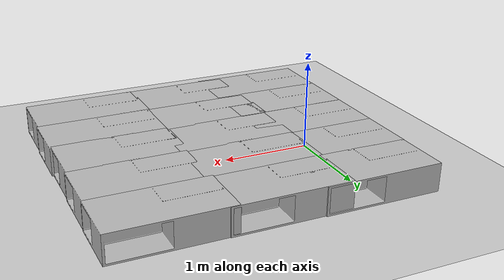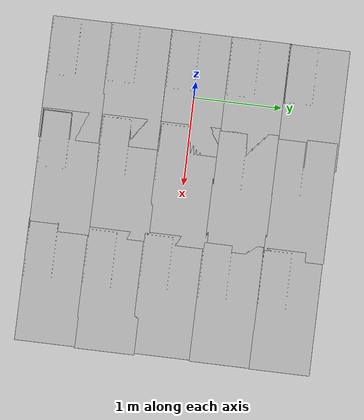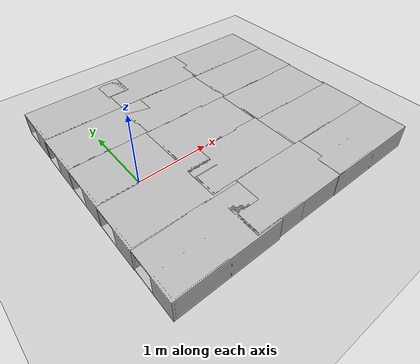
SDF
<sdf version='1.9'>
  <world name='empty_world'>
    <gravity>0 0 -9.8</gravity>
    <magnetic_field>6e-06 2.3e-05 -4.2e-05</magnetic_field>
    <atmosphere type='adiabatic'/>
    <physics type='ode'>
      <max_step_size>0.001</max_step_size>
      <real_time_factor>1</real_time_factor>
      <real_time_update_rate>1000</real_time_update_rate>
    </physics>
    <scene>
      <ambient>0.4 0.4 0.4 1</ambient>
      <background>0.7 0.7 0.7 1</background>
      <shadows>true</shadows>
    </scene>
    <model name='ground_plane'>
      <static>true</static>
      <link name='link'>
        <collision name='collision'>
          <geometry>
            <plane>
              <normal>0 0 1</normal>
              <size>1 1</size>
            </plane>
          </geometry>
          <surface>
            <friction>
              <ode/>
            </friction>
            <bounce/>
            <contact/>
          </surface>
        </collision>
        <visual name='visual'>
          <geometry>
            <plane>
              <normal>0 0 1</normal>
              <size>100 100</size>
            </plane>
          </geometry>
          <material>
            <ambient>0.8 0.8 0.8 1</ambient>
            <diffuse>0.8 0.8 0.8 1</diffuse>
            <specular>0.8 0.8 0.8 1</specular>
          </material>
        </visual>
        <pose>0 0 0 0 -0 0</pose>
        <inertial>
          <pose>0 0 0 0 -0 0</pose>
          <mass>1</mass>
          <inertia>
            <ixx>1</ixx>
            <ixy>0</ixy>
            <ixz>0</ixz>
            <iyy>1</iyy>
            <iyz>0</iyz>
            <izz>1</izz>
          </inertia>
        </inertial>
        <enable_wind>false</enable_wind>
      </link>
      <pose>0 0 0 0 -0 0</pose>
      <self_collide>false</self_collide>
    </model>
    <model name='CoffeeTable_1'>
      <static>true</static>
      <model name='aws_robomaker_residential_CoffeeTable_01'>
        <link name='link'>
          <inertial>
            <mass>21.699999999999999</mass>
            <inertia>
              <ixx>0.81374999999999975</ixx>
              <ixy>0</ixy>
              <ixz>0</ixz>
              <iyy>2.76675</iyy>
              <iyz>0</iyz>
              <izz>3.254</izz>
            </inertia>
          </inertial>
          <collision name='collision'>
            <geometry>
              <mesh>
                <uri>model://aws_robomaker_residential_CoffeeTable_01/meshes/aws_CoffeeTable_01_collision.DAE</uri>
                <scale>1 1 1</scale>
              </mesh>
            </geometry>
            <surface>
              <contact>
                <ode>
                  <max_vel>0.01</max_vel>
                </ode>
              </contact>
            </surface>
          </collision>
          <visual name='visual'>
            <geometry>
              <mesh>
                <uri>model://aws_robomaker_residential_CoffeeTable_01/meshes/aws_CoffeeTable_01_visual.DAE</uri>
              </mesh>
            </geometry>
            <meta>
              <layer>1</layer>
            </meta>
          </visual>
        </link>
        <static>true</static>
      </model>
      <pose>0 0 0.041983 0 -0 0</pose>
      <self_collide>false</self_collide>
    </model>
    <model name='CoffeeTable_2'>
      <static>true</static>
      <model name='aws_robomaker_residential_CoffeeTable_01'>
        <link name='link'>
          <inertial>
            <mass>21.699999999999999</mass>
            <inertia>
              <ixx>0.81374999999999975</ixx>
              <ixy>0</ixy>
              <ixz>0</ixz>
              <iyy>2.76675</iyy>
              <iyz>0</iyz>
              <izz>3.254</izz>
            </inertia>
          </inertial>
          <collision name='collision'>
            <geometry>
              <mesh>
                <uri>model://aws_robomaker_residential_CoffeeTable_01/meshes/aws_CoffeeTable_01_collision.DAE</uri>
                <scale>1 1 1</scale>
              </mesh>
            </geometry>
            <surface>
              <contact>
                <ode>
                  <max_vel>0.01</max_vel>
                </ode>
              </contact>
            </surface>
          </collision>
          <visual name='visual'>
            <geometry>
              <mesh>
                <uri>model://aws_robomaker_residential_CoffeeTable_01/meshes/aws_CoffeeTable_01_visual.DAE</uri>
              </mesh>
            </geometry>
            <meta>
              <layer>1</layer>
            </meta>
          </visual>
        </link>
        <static>true</static>
      </model>
      <pose>1 0 0.041983 0 -0 0</pose>
      <self_collide>false</self_collide>
    </model>
    <model name='CoffeeTable_3'>
      <static>true</static>
      <model name='aws_robomaker_residential_CoffeeTable_01'>
        <link name='link'>
          <inertial>
            <mass>21.699999999999999</mass>
            <inertia>
              <ixx>0.81374999999999975</ixx>
              <ixy>0</ixy>
              <ixz>0</ixz>
              <iyy>2.76675</iyy>
              <iyz>0</iyz>
              <izz>3.254</izz>
            </inertia>
          </inertial>
          <collision name='collision'>
            <geometry>
              <mesh>
                <uri>model://aws_robomaker_residential_CoffeeTable_01/meshes/aws_CoffeeTable_01_collision.DAE</uri>
                <scale>1 1 1</scale>
              </mesh>
            </geometry>
            <surface>
              <contact>
                <ode>
                  <max_vel>0.01</max_vel>
                </ode>
              </contact>
            </surface>
          </collision>
          <visual name='visual'>
            <geometry>
              <mesh>
                <uri>model://aws_robomaker_residential_CoffeeTable_01/meshes/aws_CoffeeTable_01_visual.DAE</uri>
              </mesh>
            </geometry>
            <meta>
              <layer>1</layer>
            </meta>
          </visual>
        </link>
        <static>true</static>
      </model>
      <pose>1.01186 1.27053 0.041983 0 -0 0</pose>
      <self_collide>false</self_collide>
    </model>
    <model name='CoffeeTable_4'>
      <static>true</static>
      <model name='aws_robomaker_residential_CoffeeTable_01'>
        <link name='link'>
          <inertial>
            <mass>21.699999999999999</mass>
            <inertia>
              <ixx>0.81374999999999975</ixx>
              <ixy>0</ixy>
              <ixz>0</ixz>
              <iyy>2.76675</iyy>
              <iyz>0</iyz>
              <izz>3.254</izz>
            </inertia>
          </inertial>
          <collision name='collision'>
            <geometry>
              <mesh>
                <uri>model://aws_robomaker_residential_CoffeeTable_01/meshes/aws_CoffeeTable_01_collision.DAE</uri>
                <scale>1 1 1</scale>
              </mesh>
            </geometry>
            <surface>
              <contact>
                <ode>
                  <max_vel>0.01</max_vel>
                </ode>
              </contact>
            </surface>
          </collision>
          <visual name='visual'>
            <geometry>
              <mesh>
                <uri>model://aws_robomaker_residential_CoffeeTable_01/meshes/aws_CoffeeTable_01_visual.DAE</uri>
              </mesh>
            </geometry>
            <meta>
              <layer>1</layer>
            </meta>
          </visual>
        </link>
        <static>true</static>
      </model>
      <pose>0 0.652446 0.041983 0 -0 0</pose>
      <self_collide>false</self_collide>
    </model>
    <model name='CoffeeTable_5'>
      <static>true</static>
      <model name='aws_robomaker_residential_CoffeeTable_01'>
        <link name='link'>
          <inertial>
            <mass>21.699999999999999</mass>
            <inertia>
              <ixx>0.81374999999999975</ixx>
              <ixy>0</ixy>
              <ixz>0</ixz>
              <iyy>2.76675</iyy>
              <iyz>0</iyz>
              <izz>3.254</izz>
            </inertia>
          </inertial>
          <collision name='collision'>
            <geometry>
              <mesh>
                <uri>model://aws_robomaker_residential_CoffeeTable_01/meshes/aws_CoffeeTable_01_collision.DAE</uri>
                <scale>1 1 1</scale>
              </mesh>
            </geometry>
            <surface>
              <contact>
                <ode>
                  <max_vel>0.01</max_vel>
                </ode>
              </contact>
            </surface>
          </collision>
          <visual name='visual'>
            <geometry>
              <mesh>
                <uri>model://aws_robomaker_residential_CoffeeTable_01/meshes/aws_CoffeeTable_01_visual.DAE</uri>
              </mesh>
            </geometry>
            <meta>
              <layer>1</layer>
            </meta>
          </visual>
        </link>
        <static>true</static>
      </model>
      <pose>1 0.631228 0.041983 0 -0 0</pose>
      <self_collide>false</self_collide>
    </model>
    <model name='CoffeeTable_6'>
      <static>true</static>
      <model name='aws_robomaker_residential_CoffeeTable_01'>
        <link name='link'>
          <inertial>
            <mass>21.699999999999999</mass>
            <inertia>
              <ixx>0.81374999999999975</ixx>
              <ixy>0</ixy>
              <ixz>0</ixz>
              <iyy>2.76675</iyy>
              <iyz>0</iyz>
              <izz>3.254</izz>
            </inertia>
          </inertial>
          <collision name='collision'>
            <geometry>
              <mesh>
                <uri>model://aws_robomaker_residential_CoffeeTable_01/meshes/aws_CoffeeTable_01_collision.DAE</uri>
                <scale>1 1 1</scale>
              </mesh>
            </geometry>
            <surface>
              <contact>
                <ode>
                  <max_vel>0.01</max_vel>
                </ode>
              </contact>
            </surface>
          </collision>
          <visual name='visual'>
            <geometry>
              <mesh>
                <uri>model://aws_robomaker_residential_CoffeeTable_01/meshes/aws_CoffeeTable_01_visual.DAE</uri>
              </mesh>
            </geometry>
            <meta>
              <layer>1</layer>
            </meta>
          </visual>
        </link>
        <static>true</static>
      </model>
      <pose>0.00463 1.28609 0.041983 0 -0 0</pose>
      <self_collide>false</self_collide>
    </model>
    <model name='CoffeeTable_1_1'>
      <static>true</static>
      <model name='aws_robomaker_residential_CoffeeTable_01'>
        <link name='link'>
          <inertial>
            <mass>21.699999999999999</mass>
            <inertia>
              <ixx>0.81374999999999975</ixx>
              <ixy>0</ixy>
              <ixz>0</ixz>
              <iyy>2.76675</iyy>
              <iyz>0</iyz>
              <izz>3.254</izz>
            </inertia>
          </inertial>
          <collision name='collision'>
            <geometry>
              <mesh>
                <uri>model://aws_robomaker_residential_CoffeeTable_01/meshes/aws_CoffeeTable_01_collision.DAE</uri>
                <scale>1 1 1</scale>
              </mesh>
            </geometry>
            <surface>
              <contact>
                <ode>
                  <max_vel>0.01</max_vel>
                </ode>
              </contact>
            </surface>
          </collision>
          <visual name='visual'>
            <geometry>
              <mesh>
                <uri>model://aws_robomaker_residential_CoffeeTable_01/meshes/aws_CoffeeTable_01_visual.DAE</uri>
              </mesh>
            </geometry>
            <meta>
              <layer>1</layer>
            </meta>
          </visual>
        </link>
        <static>true</static>
      </model>
      <pose>-0.000582 -0.654619 0.041983 0 -0 0</pose>
      <self_collide>false</self_collide>
    </model>
    <model name='CoffeeTable_1_2'>
      <static>true</static>
      <model name='aws_robomaker_residential_CoffeeTable_01'>
        <link name='link'>
          <inertial>
            <mass>21.699999999999999</mass>
            <inertia>
              <ixx>0.81374999999999975</ixx>
              <ixy>0</ixy>
              <ixz>0</ixz>
              <iyy>2.76675</iyy>
              <iyz>0</iyz>
              <izz>3.254</izz>
            </inertia>
          </inertial>
          <collision name='collision'>
            <geometry>
              <mesh>
                <uri>model://aws_robomaker_residential_CoffeeTable_01/meshes/aws_CoffeeTable_01_collision.DAE</uri>
                <scale>1 1 1</scale>
              </mesh>
            </geometry>
            <surface>
              <contact>
                <ode>
                  <max_vel>0.01</max_vel>
                </ode>
              </contact>
            </surface>
          </collision>
          <visual name='visual'>
            <geometry>
              <mesh>
                <uri>model://aws_robomaker_residential_CoffeeTable_01/meshes/aws_CoffeeTable_01_visual.DAE</uri>
              </mesh>
            </geometry>
            <meta>
              <layer>1</layer>
            </meta>
          </visual>
        </link>
        <static>true</static>
      </model>
      <pose>0.99619 -0.630908 0.041983 0 -0 0</pose>
      <self_collide>false</self_collide>
    </model>
    <model name='CoffeeTable_1_3'>
      <static>true</static>
      <model name='aws_robomaker_residential_CoffeeTable_01'>
        <link name='link'>
          <inertial>
            <mass>21.699999999999999</mass>
            <inertia>
              <ixx>0.81374999999999975</ixx>
              <ixy>0</ixy>
              <ixz>0</ixz>
              <iyy>2.76675</iyy>
              <iyz>0</iyz>
              <izz>3.254</izz>
            </inertia>
          </inertial>
          <collision name='collision'>
            <geometry>
              <mesh>
                <uri>model://aws_robomaker_residential_CoffeeTable_01/meshes/aws_CoffeeTable_01_collision.DAE</uri>
                <scale>1 1 1</scale>
              </mesh>
            </geometry>
            <surface>
              <contact>
                <ode>
                  <max_vel>0.01</max_vel>
                </ode>
              </contact>
            </surface>
          </collision>
          <visual name='visual'>
            <geometry>
              <mesh>
                <uri>model://aws_robomaker_residential_CoffeeTable_01/meshes/aws_CoffeeTable_01_visual.DAE</uri>
              </mesh>
            </geometry>
            <meta>
              <layer>1</layer>
            </meta>
          </visual>
        </link>
        <static>true</static>
      </model>
      <pose>1.00337 -1.27806 0.041983 0 -0 0</pose>
      <self_collide>false</self_collide>
    </model>
    <model name='CoffeeTable_1_4'>
      <static>true</static>
      <model name='aws_robomaker_residential_CoffeeTable_01'>
        <link name='link'>
          <inertial>
            <mass>21.699999999999999</mass>
            <inertia>
              <ixx>0.81374999999999975</ixx>
              <ixy>0</ixy>
              <ixz>0</ixz>
              <iyy>2.76675</iyy>
              <iyz>0</iyz>
              <izz>3.254</izz>
            </inertia>
          </inertial>
          <collision name='collision'>
            <geometry>
              <mesh>
                <uri>model://aws_robomaker_residential_CoffeeTable_01/meshes/aws_CoffeeTable_01_collision.DAE</uri>
                <scale>1 1 1</scale>
              </mesh>
            </geometry>
            <surface>
              <contact>
                <ode>
                  <max_vel>0.01</max_vel>
                </ode>
              </contact>
            </surface>
          </collision>
          <visual name='visual'>
            <geometry>
              <mesh>
                <uri>model://aws_robomaker_residential_CoffeeTable_01/meshes/aws_CoffeeTable_01_visual.DAE</uri>
              </mesh>
            </geometry>
            <meta>
              <layer>1</layer>
            </meta>
          </visual>
        </link>
        <static>true</static>
      </model>
      <pose>0.004101 -1.29441 0.041983 0 -0 0</pose>
      <self_collide>false</self_collide>
    </model>
    <model name='CoffeeTable_1_5'>
      <static>true</static>
      <model name='aws_robomaker_residential_CoffeeTable_01'>
        <link name='link'>
          <inertial>
            <mass>21.699999999999999</mass>
            <inertia>
              <ixx>0.81374999999999975</ixx>
              <ixy>0</ixy>
              <ixz>0</ixz>
              <iyy>2.76675</iyy>
              <iyz>0</iyz>
              <izz>3.254</izz>
            </inertia>
          </inertial>
          <collision name='collision'>
            <geometry>
              <mesh>
                <uri>model://aws_robomaker_residential_CoffeeTable_01/meshes/aws_CoffeeTable_01_collision.DAE</uri>
                <scale>1 1 1</scale>
              </mesh>
            </geometry>
            <surface>
              <contact>
                <ode>
                  <max_vel>0.01</max_vel>
                </ode>
              </contact>
            </surface>
          </collision>
          <visual name='visual'>
            <geometry>
              <mesh>
                <uri>model://aws_robomaker_residential_CoffeeTable_01/meshes/aws_CoffeeTable_01_visual.DAE</uri>
              </mesh>
            </geometry>
            <meta>
              <layer>1</layer>
            </meta>
          </visual>
        </link>
        <static>true</static>
      </model>
      <pose>2.22092 1.26113 0.041983 0 -0 0</pose>
      <self_collide>false</self_collide>
    </model>
    <model name='CoffeeTable_1_6'>
      <static>true</static>
      <model name='aws_robomaker_residential_CoffeeTable_01'>
        <link name='link'>
          <inertial>
            <mass>21.699999999999999</mass>
            <inertia>
              <ixx>0.81374999999999975</ixx>
              <ixy>0</ixy>
              <ixz>0</ixz>
              <iyy>2.76675</iyy>
              <iyz>0</iyz>
              <izz>3.254</izz>
            </inertia>
          </inertial>
          <collision name='collision'>
            <geometry>
              <mesh>
                <uri>model://aws_robomaker_residential_CoffeeTable_01/meshes/aws_CoffeeTable_01_collision.DAE</uri>
                <scale>1 1 1</scale>
              </mesh>
            </geometry>
            <surface>
              <contact>
                <ode>
                  <max_vel>0.01</max_vel>
                </ode>
              </contact>
            </surface>
          </collision>
          <visual name='visual'>
            <geometry>
              <mesh>
                <uri>model://aws_robomaker_residential_CoffeeTable_01/meshes/aws_CoffeeTable_01_visual.DAE</uri>
              </mesh>
            </geometry>
            <meta>
              <layer>1</layer>
            </meta>
          </visual>
        </link>
        <static>true</static>
      </model>
      <pose>2.21551 0.611993 0.041983 0 -0 0</pose>
      <self_collide>false</self_collide>
    </model>
    <model name='CoffeeTable_1_7'>
      <static>true</static>
      <model name='aws_robomaker_residential_CoffeeTable_01'>
        <link name='link'>
          <inertial>
            <mass>21.699999999999999</mass>
            <inertia>
              <ixx>0.81374999999999975</ixx>
              <ixy>0</ixy>
              <ixz>0</ixz>
              <iyy>2.76675</iyy>
              <iyz>0</iyz>
              <izz>3.254</izz>
            </inertia>
          </inertial>
          <collision name='collision'>
            <geometry>
              <mesh>
                <uri>model://aws_robomaker_residential_CoffeeTable_01/meshes/aws_CoffeeTable_01_collision.DAE</uri>
                <scale>1 1 1</scale>
              </mesh>
            </geometry>
            <surface>
              <contact>
                <ode>
                  <max_vel>0.01</max_vel>
                </ode>
              </contact>
            </surface>
          </collision>
          <visual name='visual'>
            <geometry>
              <mesh>
                <uri>model://aws_robomaker_residential_CoffeeTable_01/meshes/aws_CoffeeTable_01_visual.DAE</uri>
              </mesh>
            </geometry>
            <meta>
              <layer>1</layer>
            </meta>
          </visual>
        </link>
        <static>true</static>
      </model>
      <pose>2.20432 -0.031436 0.041983 0 -0 0</pose>
      <self_collide>false</self_collide>
    </model>
    <model name='CoffeeTable_1_8'>
      <static>true</static>
      <model name='aws_robomaker_residential_CoffeeTable_01'>
        <link name='link'>
          <inertial>
            <mass>21.699999999999999</mass>
            <inertia>
              <ixx>0.81374999999999975</ixx>
              <ixy>0</ixy>
              <ixz>0</ixz>
              <iyy>2.76675</iyy>
              <iyz>0</iyz>
              <izz>3.254</izz>
            </inertia>
          </inertial>
          <collision name='collision'>
            <geometry>
              <mesh>
                <uri>model://aws_robomaker_residential_CoffeeTable_01/meshes/aws_CoffeeTable_01_collision.DAE</uri>
                <scale>1 1 1</scale>
              </mesh>
            </geometry>
            <surface>
              <contact>
                <ode>
                  <max_vel>0.01</max_vel>
                </ode>
              </contact>
            </surface>
          </collision>
          <visual name='visual'>
            <geometry>
              <mesh>
                <uri>model://aws_robomaker_residential_CoffeeTable_01/meshes/aws_CoffeeTable_01_visual.DAE</uri>
              </mesh>
            </geometry>
            <meta>
              <layer>1</layer>
            </meta>
          </visual>
        </link>
        <static>true</static>
      </model>
      <pose>2.22269 -0.638146 0.041983 0 -0 0</pose>
      <self_collide>false</self_collide>
    </model>
    <model name='CoffeeTable_1_9'>
      <static>true</static>
      <model name='aws_robomaker_residential_CoffeeTable_01'>
        <link name='link'>
          <inertial>
            <mass>21.699999999999999</mass>
            <inertia>
              <ixx>0.81374999999999975</ixx>
              <ixy>0</ixy>
              <ixz>0</ixz>
              <iyy>2.76675</iyy>
              <iyz>0</iyz>
              <izz>3.254</izz>
            </inertia>
          </inertial>
          <collision name='collision'>
            <geometry>
              <mesh>
                <uri>model://aws_robomaker_residential_CoffeeTable_01/meshes/aws_CoffeeTable_01_collision.DAE</uri>
                <scale>1 1 1</scale>
              </mesh>
            </geometry>
            <surface>
              <contact>
                <ode>
                  <max_vel>0.01</max_vel>
                </ode>
              </contact>
            </surface>
          </collision>
          <visual name='visual'>
            <geometry>
              <mesh>
                <uri>model://aws_robomaker_residential_CoffeeTable_01/meshes/aws_CoffeeTable_01_visual.DAE</uri>
              </mesh>
            </geometry>
            <meta>
              <layer>1</layer>
            </meta>
          </visual>
        </link>
        <static>true</static>
      </model>
      <pose>2.21105 -1.28236 0.041983 0 -0 0</pose>
      <self_collide>false</self_collide>
    </model>
    <light name='sun' type='directional'>
      <pose>0 0 10 0 -0 0</pose>
      <cast_shadows>true</cast_shadows>
      <intensity>1</intensity>
      <direction>-0.5 0.1 -0.9</direction>
      <diffuse>0.8 0.8 0.8 1</diffuse>
      <specular>0.2 0.2 0.2 1</specular>
      <attenuation>
        <range>1000</range>
        <linear>0.01</linear>
        <constant>0.90000000000000002</constant>
        <quadratic>0.001</quadratic>
      </attenuation>
      <spot>
        <inner_angle>0</inner_angle>
        <outer_angle>0</outer_angle>
        <falloff>0</falloff>
      </spot>
    </light>
  </world>
</sdf>
